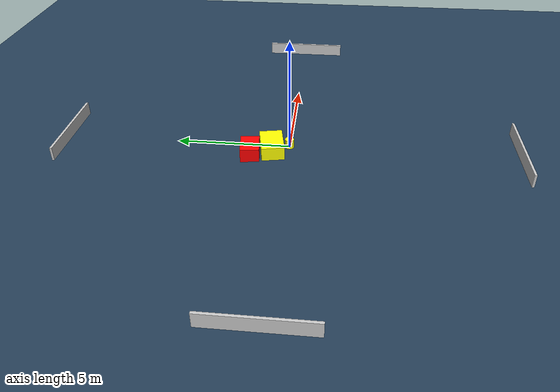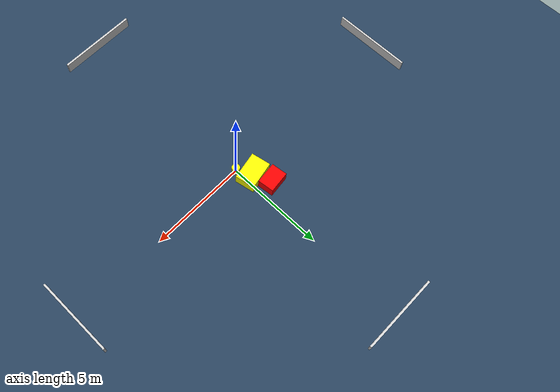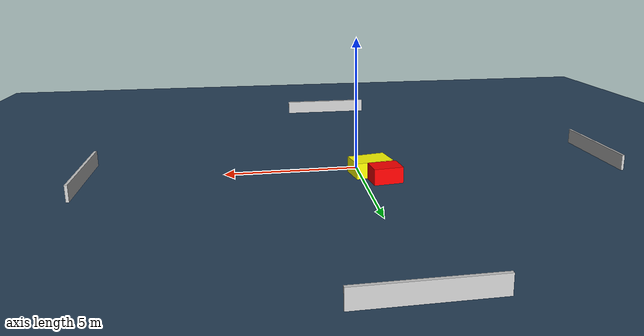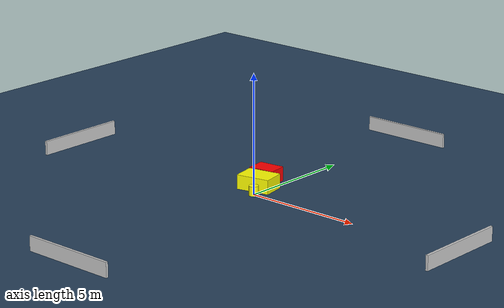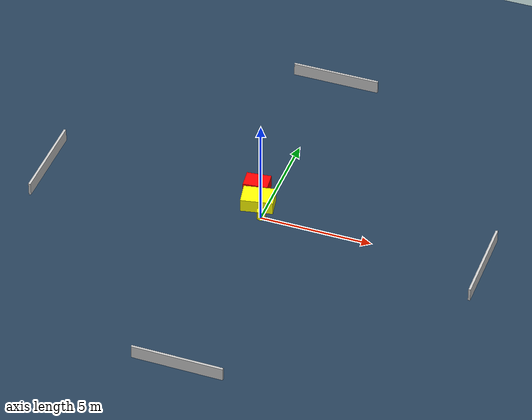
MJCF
<?xml version="1.0" ?>
<mujoco model="generated_environment">
  <option timestep="0.01" integrator="RK4" cone="elliptic"/>
  <default>
    <geom density="1"/>
  </default>
  <asset>
    <texture builtin="gradient" height="3072" name="skybox" rgb1="0.3 0.5 0.7" rgb2="0 0 0" type="skybox" width="512"/>
    <texture builtin="checker" height="300" name="groundplane" rgb1="0.2 0.3 0.4" rgb2="0.1 0.2 0.3" type="2d" width="300"/>
    <material name="groundplane" reflectance="0.2" texrepeat="5 5" texture="groundplane"/>
  </asset>
  <worldbody>
    <light dir="0 0 -1" directional="true" pos="0 0 1.5"/>
    <geom condim="3" friction="0.5 0.005 0.001" material="groundplane" name="floor" pos="0 0 0" size="0 0 0.05" type="plane"/>
    <body name="walls">
      <geom name="wall_1" condim="4" pos="-10.0 0.0 0.3" rgba="0.800000011920929 0.800000011920929 0.800000011920929 1.0" size="0.05 2.0 0.3" type="box"/>
      <geom name="wall_2" condim="4" pos="10.0 0.0 0.3" rgba="0.800000011920929 0.800000011920929 0.800000011920929 1.0" size="0.05 2.0 0.3" type="box"/>
      <geom name="wall_3" condim="4" pos="0.0 -10.0 0.3" rgba="0.800000011920929 0.800000011920929 0.800000011920929 1.0" size="2.0 0.05 0.3" type="box"/>
      <geom name="wall_4" condim="4" pos="0.0 10.0 0.3" rgba="0.800000011920929 0.800000011920929 0.800000011920929 1.0" size="2.0 0.05 0.3" type="box"/>
    </body>
    <body name="robot">
      <joint name="joint_x" type="slide" pos="0 0 0" axis="1 0 0"/>
      <joint name="joint_y" type="slide" pos="0 0 0" axis="0 1 0"/>
      <geom name="robot" type="cylinder" pos="0.0 0.0 0.2" size="0.2 0.2 0.0" mass="5.0" friction="1.0 0.005 0.0001" condim="4" rgba="1.0 1.0 0.0 1.0"/>
    </body>
    <body name="obstacle_1_movable">
      <geom name="obstacle_1_movable" condim="4" pos="-0.39686509131417924 0.74261731776687 0.3" euler="0 0 101.0200892637602" friction="0.0 0.005 0.001" rgba="1.0 1.0 0.0 1.0" size="0.4972269436475424 0.7181077215390157 0.3" type="box" mass="0.1"/>
      <joint type="free"/>
    </body>
    <body name="obstacle_2_static">
      <geom name="obstacle_2_static" condim="4" pos="-0.779565721696461 1.651314939607631 0.3" euler="0 0 96.6780209662243" friction="0.0 0.005 0.001" rgba="1.0 0.0 0.0 1.0" size="0.40801680248435734 0.5489014834284968 0.3" type="box"/>
    </body>
  </worldbody>
  <actuator>
    <motor name="actuator_x" joint="joint_x" gear="1" ctrlrange="-1 1"/>
    <motor name="actuator_y" joint="joint_y" gear="1" ctrlrange="-1 1"/>
  </actuator>
</mujoco>
